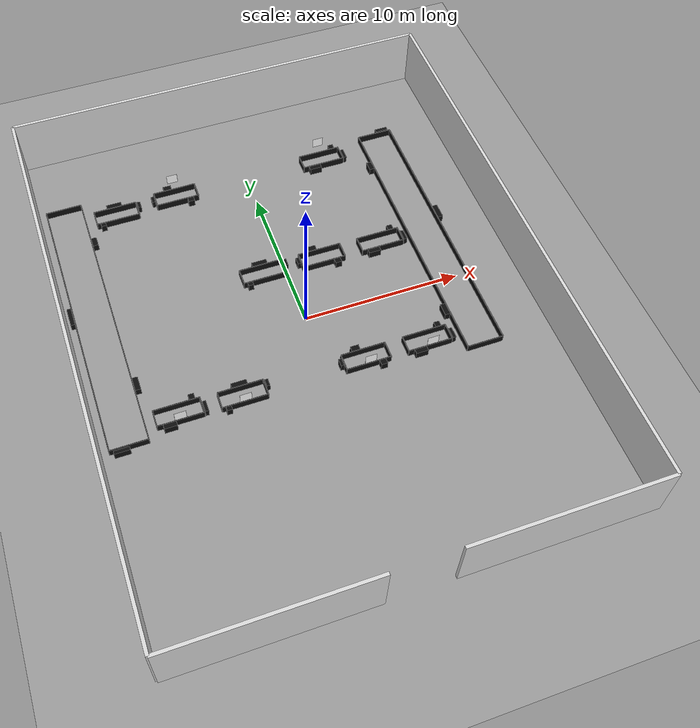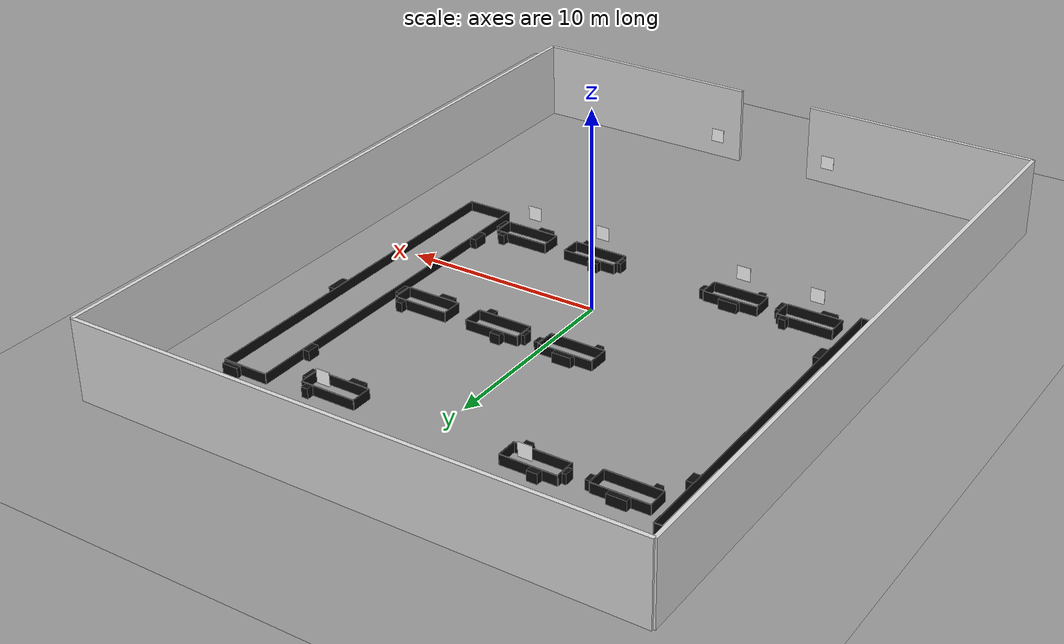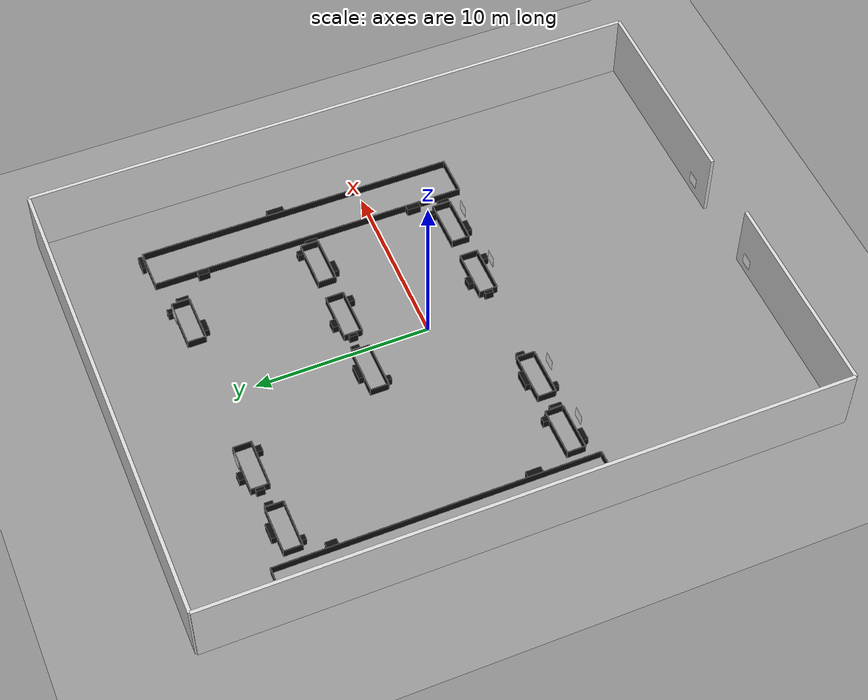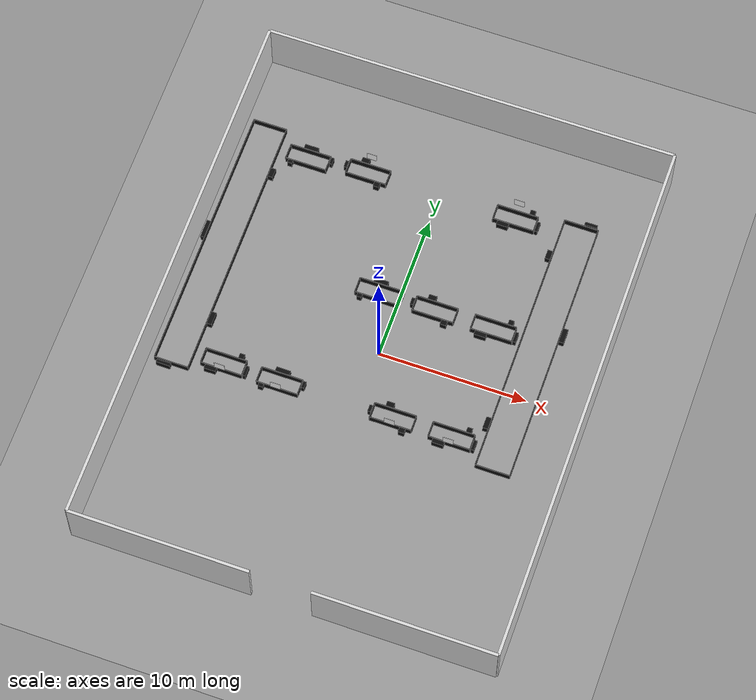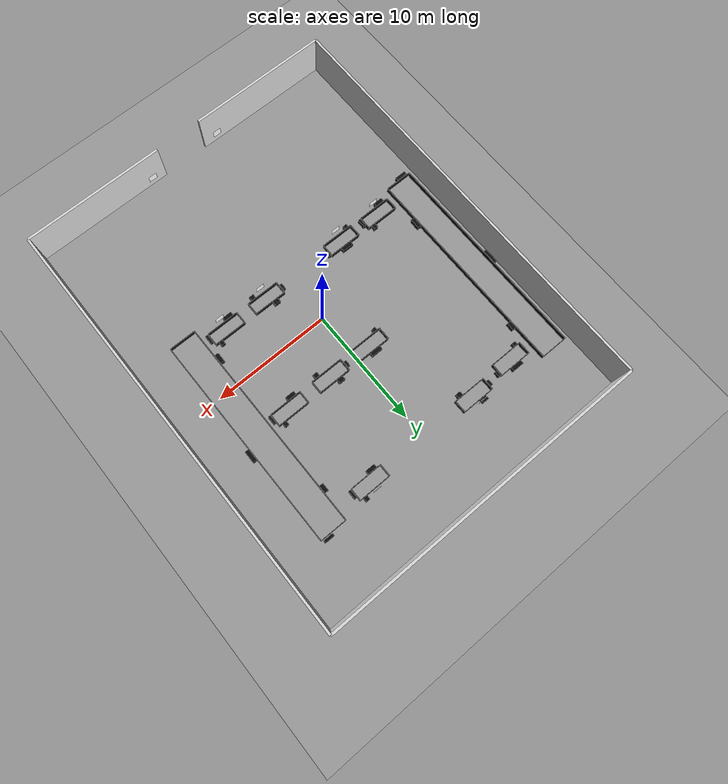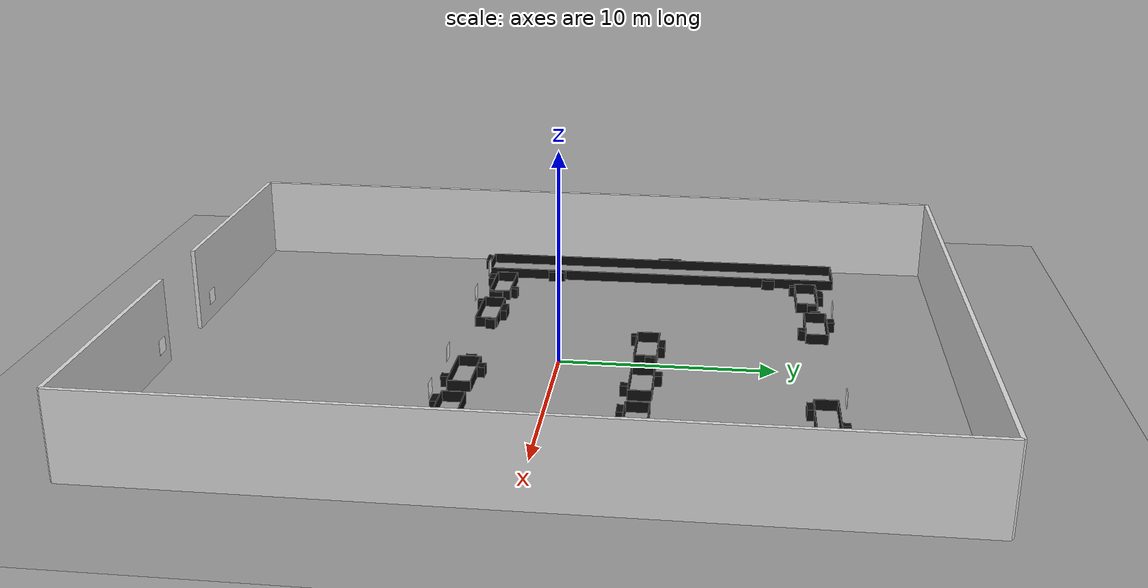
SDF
<sdf version="1.10">
 <world name="big_warehouse">
  <plugin name="gz::sim::systems::Physics" filename="gz-sim-physics-system"/>
  <plugin name="gz::sim::systems::SceneBroadcaster" filename="gz-sim-scene-broadcaster-system"/>
  <plugin name="gz::sim::systems::UserCommands" filename="gz-sim-user-commands-system"/>
  <plugin name="gz::sim::systems::Sensors" filename="gz-sim-sensors-system">
   <render_engine>ogre2</render_engine>
  </plugin>
  <gravity>0 0 -9.8000000000000007</gravity>
  <physics name="default_physics" type="ode">
   <max_step_size>0.01</max_step_size>
   <real_time_factor>1</real_time_factor>
   <real_time_update_rate>100</real_time_update_rate>
  </physics>
  <scene>
   <ambient>0.400000006 0.400000006 0.400000006 1</ambient>
   <background>0.699999988 0.699999988 0.699999988 1</background>
   <shadows>true</shadows>
  </scene>
  <magnetic_field>5.5644999999999998e-06 2.2875799999999999e-05 -4.2388400000000002e-05</magnetic_field>
  <atmosphere type="adiabatic"/>
  <model name="big_warehouse_ground">
   <static>true</static>
   <link name="ground_link">
    <collision name="ground_collision">
     <geometry><plane><normal>0 0 1</normal><size>40 50</size></plane></geometry>
    </collision>
    <visual name="ground_visual">
     <geometry><plane><normal>0 0 1</normal><size>40 50</size></plane></geometry>
     <material>
      <ambient>0.5 0.5 0.5 1</ambient>
      <diffuse>0.600000024 0.600000024 0.600000024 1</diffuse>
      <specular>0.200000003 0.200000003 0.200000003 1</specular>
     </material>
    </visual>
    <inertial>
     <mass>1</mass>
     <inertia><ixx>1</ixx><ixy>0</ixy><ixz>0</ixz><iyy>1</iyy><iyz>0</iyz><izz>1</izz></inertia>
    </inertial>
   </link>
  </model>
  <model name="wall_north">
   <static>true</static>
   <pose>0 18 2 0 0 0</pose>
   <link name="link">
    <collision name="c"><geometry><box><size>28 0.20000000000000001 4</size></box></geometry></collision>
    <visual name="v">
     <geometry><box><size>28 0.20000000000000001 4</size></box></geometry>
     <material>
      <ambient>0.800000012 0.800000012 0.800000012 1</ambient>
      <diffuse>0.850000024 0.850000024 0.850000024 1</diffuse>
     </material>
    </visual>
    <inertial>
     <mass>1</mass>
     <inertia><ixx>1</ixx><ixy>0</ixy><ixz>0</ixz><iyy>1</iyy><iyz>0</iyz><izz>1</izz></inertia>
    </inertial>
   </link>
  </model>
  <model name="wall_south_left">
   <static>true</static>
   <pose>-8 -18 2 0 0 0</pose>
   <link name="link">
    <collision name="c"><geometry><box><size>12 0.20000000000000001 4</size></box></geometry></collision>
    <visual name="v">
     <geometry><box><size>12 0.20000000000000001 4</size></box></geometry>
     <material>
      <ambient>0.800000012 0.800000012 0.800000012 1</ambient>
      <diffuse>0.850000024 0.850000024 0.850000024 1</diffuse>
     </material>
    </visual>
    <inertial>
     <mass>1</mass>
     <inertia><ixx>1</ixx><ixy>0</ixy><ixz>0</ixz><iyy>1</iyy><iyz>0</iyz><izz>1</izz></inertia>
    </inertial>
   </link>
  </model>
  <model name="wall_south_right">
   <static>true</static>
   <pose>8 -18 2 0 0 0</pose>
   <link name="link">
    <collision name="c"><geometry><box><size>12 0.20000000000000001 4</size></box></geometry></collision>
    <visual name="v">
     <geometry><box><size>12 0.20000000000000001 4</size></box></geometry>
     <material>
      <ambient>0.800000012 0.800000012 0.800000012 1</ambient>
      <diffuse>0.850000024 0.850000024 0.850000024 1</diffuse>
     </material>
    </visual>
    <inertial>
     <mass>1</mass>
     <inertia><ixx>1</ixx><ixy>0</ixy><ixz>0</ixz><iyy>1</iyy><iyz>0</iyz><izz>1</izz></inertia>
    </inertial>
   </link>
  </model>
  <model name="wall_east">
   <static>true</static>
   <pose>14 0 2 0 0 0</pose>
   <link name="link">
    <collision name="c"><geometry><box><size>0.20000000000000001 36 4</size></box></geometry></collision>
    <visual name="v">
     <geometry><box><size>0.20000000000000001 36 4</size></box></geometry>
     <material>
      <ambient>0.800000012 0.800000012 0.800000012 1</ambient>
      <diffuse>0.850000024 0.850000024 0.850000024 1</diffuse>
     </material>
    </visual>
    <inertial>
     <mass>1</mass>
     <inertia><ixx>1</ixx><ixy>0</ixy><ixz>0</ixz><iyy>1</iyy><iyz>0</iyz><izz>1</izz></inertia>
    </inertial>
   </link>
  </model>
  <model name="wall_west">
   <static>true</static>
   <pose>-14 0 2 0 0 0</pose>
   <link name="link">
    <collision name="c"><geometry><box><size>0.20000000000000001 36 4</size></box></geometry></collision>
    <visual name="v">
     <geometry><box><size>0.20000000000000001 36 4</size></box></geometry>
     <material>
      <ambient>0.800000012 0.800000012 0.800000012 1</ambient>
      <diffuse>0.850000024 0.850000024 0.850000024 1</diffuse>
     </material>
    </visual>
    <inertial>
     <mass>1</mass>
     <inertia><ixx>1</ixx><ixy>0</ixy><ixz>0</ixz><iyy>1</iyy><iyz>0</iyz><izz>1</izz></inertia>
    </inertial>
   </link>
  </model>
  <model name="aruco_marker_06">
   <include><uri>model://warehouse_aruco_marker_06</uri></include>
   <pose>-3.25 -17.72 1.25 0 0 1.5708</pose>
  </model>
  <model name="aruco_marker_07">
   <include><uri>model://warehouse_aruco_marker_07</uri></include>
   <pose>3.25 -17.72 1.25 0 0 1.5708</pose>
  </model>
  <model name="shelf_bank_2_a_lidar_blocker">
   <include><uri>model://warehouse_lidar_blocker_short_b</uri></include>
   <pose>-9.1134042739868164 -4 0 0 0 1.5708</pose>
  </model>
  <model name="aruco_marker_00">
   <include><uri>model://warehouse_aruco_marker_00</uri></include>
   <pose>-9.1134042739868164 -4.72 1.25 0 0 -1.5708</pose>
  </model>
  <model name="shelf_bank_2_b_lidar_blocker">
   <include><uri>model://warehouse_lidar_blocker_short_c</uri></include>
   <pose>-5.2876682281494141 -4.0644798278808594 0 0 0 1.5708</pose>
  </model>
  <model name="aruco_marker_01">
   <include><uri>model://warehouse_aruco_marker_01</uri></include>
   <pose>-5.2876682281494141 -4.7844798278808594 1.25 0 0 -1.5708</pose>
  </model>
  <model name="shelf_bank_2_c_lidar_blocker">
   <include><uri>model://warehouse_lidar_blocker_short</uri></include>
   <pose>2.3689959049224854 -4 0 0 0 1.5708</pose>
  </model>
  <model name="aruco_marker_02">
   <include><uri>model://warehouse_aruco_marker_02</uri></include>
   <pose>2.3689959049224854 -4.72 1.25 0 0 -1.5708</pose>
  </model>
  <model name="shelf_bank_2_d_lidar_blocker">
   <include><uri>model://warehouse_lidar_blocker_short_b</uri></include>
   <pose>6.2993936538696289 -4 0 0 0 1.5708</pose>
  </model>
  <model name="aruco_marker_03">
   <include><uri>model://warehouse_aruco_marker_03</uri></include>
   <pose>6.2993936538696289 -4.72 1.25 0 0 -1.5708</pose>
  </model>
  <model name="shelf_bank_3_a_lidar_blocker">
   <include><uri>model://warehouse_lidar_blocker_long_b</uri></include>
   <pose>-12.286680221557617 4 0 0 0 0</pose>
  </model>
  <model name="shelf_bank_3_b_lidar_blocker">
   <include><uri>model://warehouse_lidar_blocker_short_c</uri></include>
   <pose>-1.4750902652740479 4 0 0 0 1.5708</pose>
  </model>
  <model name="shelf_bank_3_c_lidar_blocker">
   <include><uri>model://warehouse_lidar_blocker_short</uri></include>
   <pose>2.4397945404052734 4 0 0 0 1.5708</pose>
  </model>
  <model name="shelf_bank_3_d_lidar_blocker">
   <include><uri>model://warehouse_lidar_blocker_short_b</uri></include>
   <pose>6.4202580451965332 4 0 0 0 1.5708</pose>
  </model>
  <model name="shelf_bank_4_a_lidar_blocker">
   <include><uri>model://warehouse_lidar_blocker_short_c</uri></include>
   <pose>-9.0655641555786133 11.693599700927734 0 0 0 1.5708</pose>
  </model>
  <model name="shelf_bank_4_b_lidar_blocker">
   <include><uri>model://warehouse_lidar_blocker_short</uri></include>
   <pose>-4.9744858741760254 12 0 0 0 1.5708</pose>
  </model>
  <model name="aruco_marker_04">
   <include><uri>model://warehouse_aruco_marker_04</uri></include>
   <pose>-4.9744858741760254 12.72 1.25 0 0 1.5708</pose>
  </model>
  <model name="shelf_bank_4_c_lidar_blocker">
   <include><uri>model://warehouse_lidar_blocker_short_b</uri></include>
   <pose>5.2562918663024902 12 0 0 0 1.5708</pose>
  </model>
  <model name="aruco_marker_05">
   <include><uri>model://warehouse_aruco_marker_05</uri></include>
   <pose>5.2562918663024902 12.72 1.25 0 0 1.5708</pose>
  </model>
  <model name="shelf_bank_4_d_lidar_blocker">
   <include><uri>model://warehouse_lidar_blocker_long</uri></include>
   <pose>9.5003032684326172 3.7647700309753418 0 0 0 0</pose>
  </model>
  <light name="Warehouse_CeilingLight_001" type="point">
   <pose>-7 -9 9 0 0 0</pose>
   <intensity>1</intensity>
   <direction>0 0 -1</direction>
   <diffuse>0.5 0.5 0.5 1</diffuse>
   <specular>0.200000003 0.200000003 0.200000003 1</specular>
   <attenuation>
    <range>120</range>
    <linear>0.01</linear>
    <constant>0.29999999999999999</constant>
    <quadratic>0.001</quadratic>
   </attenuation>
   <spot><inner_angle>0</inner_angle><outer_angle>0</outer_angle><falloff>0</falloff></spot>
  </light>
  <light name="Warehouse_CeilingLight_002" type="point">
   <pose>7 -9 9 0 0 0</pose>
   <intensity>1</intensity>
   <direction>0 0 -1</direction>
   <diffuse>0.5 0.5 0.5 1</diffuse>
   <specular>0.200000003 0.200000003 0.200000003 1</specular>
   <attenuation>
    <range>120</range>
    <linear>0.01</linear>
    <constant>0.29999999999999999</constant>
    <quadratic>0.001</quadratic>
   </attenuation>
   <spot><inner_angle>0</inner_angle><outer_angle>0</outer_angle><falloff>0</falloff></spot>
  </light>
  <light name="Warehouse_CeilingLight_003" type="point">
   <pose>-7 9 9 0 0 0</pose>
   <intensity>1</intensity>
   <direction>0 0 -1</direction>
   <diffuse>0.5 0.5 0.5 1</diffuse>
   <specular>0.200000003 0.200000003 0.200000003 1</specular>
   <attenuation>
    <range>120</range>
    <linear>0.01</linear>
    <constant>0.29999999999999999</constant>
    <quadratic>0.001</quadratic>
   </attenuation>
   <spot><inner_angle>0</inner_angle><outer_angle>0</outer_angle><falloff>0</falloff></spot>
  </light>
  <light name="Warehouse_CeilingLight_004" type="point">
   <pose>7 9 9 0 0 0</pose>
   <intensity>1</intensity>
   <direction>0 0 -1</direction>
   <diffuse>0.5 0.5 0.5 1</diffuse>
   <specular>0.200000003 0.200000003 0.200000003 1</specular>
   <attenuation>
    <range>120</range>
    <linear>0.01</linear>
    <constant>0.29999999999999999</constant>
    <quadratic>0.001</quadratic>
   </attenuation>
   <spot><inner_angle>0</inner_angle><outer_angle>0</outer_angle><falloff>0</falloff></spot>
  </light>
 </world>
</sdf>

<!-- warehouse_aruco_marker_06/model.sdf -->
<sdf version="1.6">
  <model name="warehouse_aruco_marker_06">
    <static>true</static>
    <link name="link">
      <visual name="marker_visual">
        <cast_shadows>false</cast_shadows>
        <geometry>
          <box>
            <size>0.02 0.70 0.70</size>
          </box>
        </geometry>
        <material>
          <ambient>1 1 1 1</ambient>
          <diffuse>1 1 1 1</diffuse>
          <specular>0.1 0.1 0.1 1</specular>
          <pbr>
            <metal>
              <albedo_map>materials/textures/aruco_06.png</albedo_map>
              <metalness>0.0</metalness>
              <roughness>0.8</roughness>
            </metal>
          </pbr>
        </material>
      </visual>
    </link>
  </model>
</sdf>

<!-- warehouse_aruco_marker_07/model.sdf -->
<sdf version="1.6">
  <model name="warehouse_aruco_marker_07">
    <static>true</static>
    <link name="link">
      <visual name="marker_visual">
        <cast_shadows>false</cast_shadows>
        <geometry>
          <box>
            <size>0.02 0.70 0.70</size>
          </box>
        </geometry>
        <material>
          <ambient>1 1 1 1</ambient>
          <diffuse>1 1 1 1</diffuse>
          <specular>0.1 0.1 0.1 1</specular>
          <pbr>
            <metal>
              <albedo_map>materials/textures/aruco_07.png</albedo_map>
              <metalness>0.0</metalness>
              <roughness>0.8</roughness>
            </metal>
          </pbr>
        </material>
      </visual>
    </link>
  </model>
</sdf>

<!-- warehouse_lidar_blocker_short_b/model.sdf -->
<sdf version="1.6">
  <model name="warehouse_lidar_blocker_short_b">
    <static>true</static>
    <link name="link">
      <collision name="x_min_lidar_rail_collision">
        <pose>-0.525 0 0.25 0 0 0</pose>
        <geometry><box><size>0.05 2.80 0.50</size></box></geometry>
      </collision>
      <collision name="x_max_lidar_rail_collision">
        <pose>0.525 0 0.25 0 0 0</pose>
        <geometry><box><size>0.05 2.80 0.50</size></box></geometry>
      </collision>
      <collision name="y_min_lidar_rail_collision">
        <pose>0 -1.40 0.25 0 0 0</pose>
        <geometry><box><size>1.05 0.05 0.50</size></box></geometry>
      </collision>
      <collision name="y_max_lidar_rail_collision">
        <pose>0 1.40 0.25 0 0 0</pose>
        <geometry><box><size>1.05 0.05 0.50</size></box></geometry>
      </collision>
      <collision name="west_marker_collision">
        <pose>-0.70 0.66 0.25 0 0 0</pose>
        <geometry><box><size>0.30 0.78 0.50</size></box></geometry>
      </collision>
      <collision name="south_marker_collision">
        <pose>-0.16 -1.56 0.25 0 0 0</pose>
        <geometry><box><size>0.70 0.20 0.50</size></box></geometry>
      </collision>
      <collision name="east_marker_collision">
        <pose>0.72 -0.96 0.25 0 0 0</pose>
        <geometry><box><size>0.34 0.34 0.50</size></box></geometry>
      </collision>
      <visual name="x_min_lidar_rail">
        <pose>-0.525 0 0.25 0 0 0</pose>
        <cast_shadows>false</cast_shadows>
        <geometry><box><size>0.05 2.80 0.50</size></box></geometry>
        <material><ambient>0.03 0.03 0.03 1</ambient><diffuse>0.05 0.05 0.05 1</diffuse></material>
      </visual>
      <visual name="x_max_lidar_rail">
        <pose>0.525 0 0.25 0 0 0</pose>
        <cast_shadows>false</cast_shadows>
        <geometry><box><size>0.05 2.80 0.50</size></box></geometry>
        <material><ambient>0.03 0.03 0.03 1</ambient><diffuse>0.05 0.05 0.05 1</diffuse></material>
      </visual>
      <visual name="y_min_lidar_rail">
        <pose>0 -1.40 0.25 0 0 0</pose>
        <cast_shadows>false</cast_shadows>
        <geometry><box><size>1.05 0.05 0.50</size></box></geometry>
        <material><ambient>0.03 0.03 0.03 1</ambient><diffuse>0.05 0.05 0.05 1</diffuse></material>
      </visual>
      <visual name="y_max_lidar_rail">
        <pose>0 1.40 0.25 0 0 0</pose>
        <cast_shadows>false</cast_shadows>
        <geometry><box><size>1.05 0.05 0.50</size></box></geometry>
        <material><ambient>0.03 0.03 0.03 1</ambient><diffuse>0.05 0.05 0.05 1</diffuse></material>
      </visual>
      <visual name="west_marker">
        <pose>-0.70 0.66 0.25 0 0 0</pose>
        <cast_shadows>false</cast_shadows>
        <geometry><box><size>0.30 0.78 0.50</size></box></geometry>
        <material><ambient>0.03 0.03 0.03 1</ambient><diffuse>0.05 0.05 0.05 1</diffuse></material>
      </visual>
      <visual name="south_marker">
        <pose>-0.16 -1.56 0.25 0 0 0</pose>
        <cast_shadows>false</cast_shadows>
        <geometry><box><size>0.70 0.20 0.50</size></box></geometry>
        <material><ambient>0.03 0.03 0.03 1</ambient><diffuse>0.05 0.05 0.05 1</diffuse></material>
      </visual>
      <visual name="east_marker">
        <pose>0.72 -0.96 0.25 0 0 0</pose>
        <cast_shadows>false</cast_shadows>
        <geometry><box><size>0.34 0.34 0.50</size></box></geometry>
        <material><ambient>0.03 0.03 0.03 1</ambient><diffuse>0.05 0.05 0.05 1</diffuse></material>
      </visual>
    </link>
  </model>
</sdf>

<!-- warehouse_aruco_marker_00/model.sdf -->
<sdf version="1.6">
  <model name="warehouse_aruco_marker_00">
    <static>true</static>
    <link name="link">
      <visual name="marker_visual">
        <cast_shadows>false</cast_shadows>
        <geometry>
          <box>
            <size>0.02 0.70 0.70</size>
          </box>
        </geometry>
        <material>
          <ambient>1 1 1 1</ambient>
          <diffuse>1 1 1 1</diffuse>
          <specular>0.1 0.1 0.1 1</specular>
          <pbr>
            <metal>
              <albedo_map>materials/textures/aruco_00.png</albedo_map>
              <metalness>0.0</metalness>
              <roughness>0.8</roughness>
            </metal>
          </pbr>
        </material>
      </visual>
    </link>
  </model>
</sdf>

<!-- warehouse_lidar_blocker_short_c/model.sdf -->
<sdf version="1.6">
  <model name="warehouse_lidar_blocker_short_c">
    <static>true</static>
    <link name="link">
      <collision name="x_min_lidar_rail_collision">
        <pose>-0.525 0 0.25 0 0 0</pose>
        <geometry><box><size>0.05 2.80 0.50</size></box></geometry>
      </collision>
      <collision name="x_max_lidar_rail_collision">
        <pose>0.525 0 0.25 0 0 0</pose>
        <geometry><box><size>0.05 2.80 0.50</size></box></geometry>
      </collision>
      <collision name="y_min_lidar_rail_collision">
        <pose>0 -1.40 0.25 0 0 0</pose>
        <geometry><box><size>1.05 0.05 0.50</size></box></geometry>
      </collision>
      <collision name="y_max_lidar_rail_collision">
        <pose>0 1.40 0.25 0 0 0</pose>
        <geometry><box><size>1.05 0.05 0.50</size></box></geometry>
      </collision>
      <collision name="east_marker_collision">
        <pose>0.70 0.02 0.25 0 0 0</pose>
        <geometry><box><size>0.30 0.96 0.50</size></box></geometry>
      </collision>
      <collision name="west_marker_collision">
        <pose>-0.68 1.02 0.25 0 0 0</pose>
        <geometry><box><size>0.26 0.32 0.50</size></box></geometry>
      </collision>
      <collision name="south_marker_collision">
        <pose>0.24 -1.56 0.25 0 0 0</pose>
        <geometry><box><size>0.46 0.20 0.50</size></box></geometry>
      </collision>
      <visual name="x_min_lidar_rail">
        <pose>-0.525 0 0.25 0 0 0</pose>
        <cast_shadows>false</cast_shadows>
        <geometry><box><size>0.05 2.80 0.50</size></box></geometry>
        <material><ambient>0.03 0.03 0.03 1</ambient><diffuse>0.05 0.05 0.05 1</diffuse></material>
      </visual>
      <visual name="x_max_lidar_rail">
        <pose>0.525 0 0.25 0 0 0</pose>
        <cast_shadows>false</cast_shadows>
        <geometry><box><size>0.05 2.80 0.50</size></box></geometry>
        <material><ambient>0.03 0.03 0.03 1</ambient><diffuse>0.05 0.05 0.05 1</diffuse></material>
      </visual>
      <visual name="y_min_lidar_rail">
        <pose>0 -1.40 0.25 0 0 0</pose>
        <cast_shadows>false</cast_shadows>
        <geometry><box><size>1.05 0.05 0.50</size></box></geometry>
        <material><ambient>0.03 0.03 0.03 1</ambient><diffuse>0.05 0.05 0.05 1</diffuse></material>
      </visual>
      <visual name="y_max_lidar_rail">
        <pose>0 1.40 0.25 0 0 0</pose>
        <cast_shadows>false</cast_shadows>
        <geometry><box><size>1.05 0.05 0.50</size></box></geometry>
        <material><ambient>0.03 0.03 0.03 1</ambient><diffuse>0.05 0.05 0.05 1</diffuse></material>
      </visual>
      <visual name="east_marker">
        <pose>0.70 0.02 0.25 0 0 0</pose>
        <cast_shadows>false</cast_shadows>
        <geometry><box><size>0.30 0.96 0.50</size></box></geometry>
        <material><ambient>0.03 0.03 0.03 1</ambient><diffuse>0.05 0.05 0.05 1</diffuse></material>
      </visual>
      <visual name="west_marker">
        <pose>-0.68 1.02 0.25 0 0 0</pose>
        <cast_shadows>false</cast_shadows>
        <geometry><box><size>0.26 0.32 0.50</size></box></geometry>
        <material><ambient>0.03 0.03 0.03 1</ambient><diffuse>0.05 0.05 0.05 1</diffuse></material>
      </visual>
      <visual name="south_marker">
        <pose>0.24 -1.56 0.25 0 0 0</pose>
        <cast_shadows>false</cast_shadows>
        <geometry><box><size>0.46 0.20 0.50</size></box></geometry>
        <material><ambient>0.03 0.03 0.03 1</ambient><diffuse>0.05 0.05 0.05 1</diffuse></material>
      </visual>
    </link>
  </model>
</sdf>

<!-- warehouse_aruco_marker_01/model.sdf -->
<sdf version="1.6">
  <model name="warehouse_aruco_marker_01">
    <static>true</static>
    <link name="link">
      <visual name="marker_visual">
        <cast_shadows>false</cast_shadows>
        <geometry>
          <box>
            <size>0.02 0.70 0.70</size>
          </box>
        </geometry>
        <material>
          <ambient>1 1 1 1</ambient>
          <diffuse>1 1 1 1</diffuse>
          <specular>0.1 0.1 0.1 1</specular>
          <pbr>
            <metal>
              <albedo_map>materials/textures/aruco_01.png</albedo_map>
              <metalness>0.0</metalness>
              <roughness>0.8</roughness>
            </metal>
          </pbr>
        </material>
      </visual>
    </link>
  </model>
</sdf>

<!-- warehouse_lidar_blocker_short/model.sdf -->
<sdf version="1.6">
  <model name="warehouse_lidar_blocker_short">
    <static>true</static>
    <link name="link">
      <!-- Keep the shelf footprint lidar-visible, but put the distinguishing
           features on the OUTSIDE of the rack so they are actually visible to
           the scanner from the aisle. -->
      <collision name="x_min_lidar_rail_collision">
        <pose>-0.525 0 0.25 0 0 0</pose>
        <geometry>
          <box>
            <size>0.05 2.80 0.50</size>
          </box>
        </geometry>
      </collision>
      <collision name="x_max_lidar_rail_collision">
        <pose>0.525 0 0.25 0 0 0</pose>
        <geometry>
          <box>
            <size>0.05 2.80 0.50</size>
          </box>
        </geometry>
      </collision>
      <collision name="y_min_lidar_rail_collision">
        <pose>0 -1.40 0.25 0 0 0</pose>
        <geometry>
          <box>
            <size>1.05 0.05 0.50</size>
          </box>
        </geometry>
      </collision>
      <collision name="y_max_lidar_rail_collision">
        <pose>0 1.40 0.25 0 0 0</pose>
        <geometry>
          <box>
            <size>1.05 0.05 0.50</size>
          </box>
        </geometry>
      </collision>
      <collision name="west_marker_collision">
        <pose>-0.72 -0.84 0.25 0 0 0</pose>
        <geometry>
          <box>
            <size>0.34 0.40 0.50</size>
          </box>
        </geometry>
      </collision>
      <collision name="east_marker_collision">
        <pose>0.72 0.42 0.25 0 0 0</pose>
        <geometry>
          <box>
            <size>0.34 0.52 0.50</size>
          </box>
        </geometry>
      </collision>
      <collision name="north_marker_collision">
        <pose>0.05 1.55 0.25 0 0 0</pose>
        <geometry>
          <box>
            <size>0.48 0.20 0.50</size>
          </box>
        </geometry>
      </collision>
      <visual name="x_min_lidar_rail">
        <pose>-0.525 0 0.25 0 0 0</pose>
        <cast_shadows>false</cast_shadows>
        <geometry>
          <box>
            <size>0.05 2.80 0.50</size>
          </box>
        </geometry>
        <material>
          <ambient>0.03 0.03 0.03 1</ambient>
          <diffuse>0.05 0.05 0.05 1</diffuse>
        </material>
      </visual>
      <visual name="x_max_lidar_rail">
        <pose>0.525 0 0.25 0 0 0</pose>
        <cast_shadows>false</cast_shadows>
        <geometry>
          <box>
            <size>0.05 2.80 0.50</size>
          </box>
        </geometry>
        <material>
          <ambient>0.03 0.03 0.03 1</ambient>
          <diffuse>0.05 0.05 0.05 1</diffuse>
        </material>
      </visual>
      <visual name="y_min_lidar_rail">
        <pose>0 -1.40 0.25 0 0 0</pose>
        <cast_shadows>false</cast_shadows>
        <geometry>
          <box>
            <size>1.05 0.05 0.50</size>
          </box>
        </geometry>
        <material>
          <ambient>0.03 0.03 0.03 1</ambient>
          <diffuse>0.05 0.05 0.05 1</diffuse>
        </material>
      </visual>
      <visual name="y_max_lidar_rail">
        <pose>0 1.40 0.25 0 0 0</pose>
        <cast_shadows>false</cast_shadows>
        <geometry>
          <box>
            <size>1.05 0.05 0.50</size>
          </box>
        </geometry>
        <material>
          <ambient>0.03 0.03 0.03 1</ambient>
          <diffuse>0.05 0.05 0.05 1</diffuse>
        </material>
      </visual>
      <visual name="west_marker">
        <pose>-0.72 -0.84 0.25 0 0 0</pose>
        <cast_shadows>false</cast_shadows>
        <geometry>
          <box>
            <size>0.34 0.40 0.50</size>
          </box>
        </geometry>
        <material>
          <ambient>0.03 0.03 0.03 1</ambient>
          <diffuse>0.05 0.05 0.05 1</diffuse>
        </material>
      </visual>
      <visual name="east_marker">
        <pose>0.72 0.42 0.25 0 0 0</pose>
        <cast_shadows>false</cast_shadows>
        <geometry>
          <box>
            <size>0.34 0.52 0.50</size>
          </box>
        </geometry>
        <material>
          <ambient>0.03 0.03 0.03 1</ambient>
          <diffuse>0.05 0.05 0.05 1</diffuse>
        </material>
      </visual>
      <visual name="north_marker">
        <pose>0.05 1.55 0.25 0 0 0</pose>
        <cast_shadows>false</cast_shadows>
        <geometry>
          <box>
            <size>0.48 0.20 0.50</size>
          </box>
        </geometry>
        <material>
          <ambient>0.03 0.03 0.03 1</ambient>
          <diffuse>0.05 0.05 0.05 1</diffuse>
        </material>
      </visual>
    </link>
  </model>
</sdf>

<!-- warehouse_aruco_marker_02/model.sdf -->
<sdf version="1.6">
  <model name="warehouse_aruco_marker_02">
    <static>true</static>
    <link name="link">
      <visual name="marker_visual">
        <cast_shadows>false</cast_shadows>
        <geometry>
          <box>
            <size>0.02 0.70 0.70</size>
          </box>
        </geometry>
        <material>
          <ambient>1 1 1 1</ambient>
          <diffuse>1 1 1 1</diffuse>
          <specular>0.1 0.1 0.1 1</specular>
          <pbr>
            <metal>
              <albedo_map>materials/textures/aruco_02.png</albedo_map>
              <metalness>0.0</metalness>
              <roughness>0.8</roughness>
            </metal>
          </pbr>
        </material>
      </visual>
    </link>
  </model>
</sdf>

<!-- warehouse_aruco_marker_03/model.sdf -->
<sdf version="1.6">
  <model name="warehouse_aruco_marker_03">
    <static>true</static>
    <link name="link">
      <visual name="marker_visual">
        <cast_shadows>false</cast_shadows>
        <geometry>
          <box>
            <size>0.02 0.70 0.70</size>
          </box>
        </geometry>
        <material>
          <ambient>1 1 1 1</ambient>
          <diffuse>1 1 1 1</diffuse>
          <specular>0.1 0.1 0.1 1</specular>
          <pbr>
            <metal>
              <albedo_map>materials/textures/aruco_03.png</albedo_map>
              <metalness>0.0</metalness>
              <roughness>0.8</roughness>
            </metal>
          </pbr>
        </material>
      </visual>
    </link>
  </model>
</sdf>

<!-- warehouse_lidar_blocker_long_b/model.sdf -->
<sdf version="1.6">
  <model name="warehouse_lidar_blocker_long_b">
    <static>true</static>
    <link name="link">
      <collision name="x_min_lidar_rail_collision">
        <pose>-1.15 0 0.25 0 0 0</pose>
        <geometry><box><size>0.05 18.30 0.50</size></box></geometry>
      </collision>
      <collision name="x_max_lidar_rail_collision">
        <pose>1.15 0 0.25 0 0 0</pose>
        <geometry><box><size>0.05 18.30 0.50</size></box></geometry>
      </collision>
      <collision name="y_min_lidar_rail_collision">
        <pose>0 -9.15 0.25 0 0 0</pose>
        <geometry><box><size>2.30 0.05 0.50</size></box></geometry>
      </collision>
      <collision name="y_max_lidar_rail_collision">
        <pose>0 9.15 0.25 0 0 0</pose>
        <geometry><box><size>2.30 0.05 0.50</size></box></geometry>
      </collision>
      <collision name="east_marker_low_collision">
        <pose>1.34 -5.40 0.25 0 0 0</pose>
        <geometry><box><size>0.34 0.88 0.50</size></box></geometry>
      </collision>
      <collision name="west_marker_mid_collision">
        <pose>-1.30 0.50 0.25 0 0 0</pose>
        <geometry><box><size>0.26 1.24 0.50</size></box></geometry>
      </collision>
      <collision name="east_marker_high_collision">
        <pose>1.34 5.80 0.25 0 0 0</pose>
        <geometry><box><size>0.34 0.64 0.50</size></box></geometry>
      </collision>
      <collision name="south_marker_collision">
        <pose>-0.45 -9.36 0.25 0 0 0</pose>
        <geometry><box><size>0.94 0.22 0.50</size></box></geometry>
      </collision>
      <visual name="x_min_lidar_rail">
        <pose>-1.15 0 0.25 0 0 0</pose>
        <cast_shadows>false</cast_shadows>
        <geometry><box><size>0.05 18.30 0.50</size></box></geometry>
        <material><ambient>0.03 0.03 0.03 1</ambient><diffuse>0.05 0.05 0.05 1</diffuse></material>
      </visual>
      <visual name="x_max_lidar_rail">
        <pose>1.15 0 0.25 0 0 0</pose>
        <cast_shadows>false</cast_shadows>
        <geometry><box><size>0.05 18.30 0.50</size></box></geometry>
        <material><ambient>0.03 0.03 0.03 1</ambient><diffuse>0.05 0.05 0.05 1</diffuse></material>
      </visual>
      <visual name="y_min_lidar_rail">
        <pose>0 -9.15 0.25 0 0 0</pose>
        <cast_shadows>false</cast_shadows>
        <geometry><box><size>2.30 0.05 0.50</size></box></geometry>
        <material><ambient>0.03 0.03 0.03 1</ambient><diffuse>0.05 0.05 0.05 1</diffuse></material>
      </visual>
      <visual name="y_max_lidar_rail">
        <pose>0 9.15 0.25 0 0 0</pose>
        <cast_shadows>false</cast_shadows>
        <geometry><box><size>2.30 0.05 0.50</size></box></geometry>
        <material><ambient>0.03 0.03 0.03 1</ambient><diffuse>0.05 0.05 0.05 1</diffuse></material>
      </visual>
      <visual name="east_marker_low">
        <pose>1.34 -5.40 0.25 0 0 0</pose>
        <cast_shadows>false</cast_shadows>
        <geometry><box><size>0.34 0.88 0.50</size></box></geometry>
        <material><ambient>0.03 0.03 0.03 1</ambient><diffuse>0.05 0.05 0.05 1</diffuse></material>
      </visual>
      <visual name="west_marker_mid">
        <pose>-1.30 0.50 0.25 0 0 0</pose>
        <cast_shadows>false</cast_shadows>
        <geometry><box><size>0.26 1.24 0.50</size></box></geometry>
        <material><ambient>0.03 0.03 0.03 1</ambient><diffuse>0.05 0.05 0.05 1</diffuse></material>
      </visual>
      <visual name="east_marker_high">
        <pose>1.34 5.80 0.25 0 0 0</pose>
        <cast_shadows>false</cast_shadows>
        <geometry><box><size>0.34 0.64 0.50</size></box></geometry>
        <material><ambient>0.03 0.03 0.03 1</ambient><diffuse>0.05 0.05 0.05 1</diffuse></material>
      </visual>
      <visual name="south_marker">
        <pose>-0.45 -9.36 0.25 0 0 0</pose>
        <cast_shadows>false</cast_shadows>
        <geometry><box><size>0.94 0.22 0.50</size></box></geometry>
        <material><ambient>0.03 0.03 0.03 1</ambient><diffuse>0.05 0.05 0.05 1</diffuse></material>
      </visual>
    </link>
  </model>
</sdf>

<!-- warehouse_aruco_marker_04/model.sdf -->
<sdf version="1.6">
  <model name="warehouse_aruco_marker_04">
    <static>true</static>
    <link name="link">
      <visual name="marker_visual">
        <cast_shadows>false</cast_shadows>
        <geometry>
          <box>
            <size>0.02 0.70 0.70</size>
          </box>
        </geometry>
        <material>
          <ambient>1 1 1 1</ambient>
          <diffuse>1 1 1 1</diffuse>
          <specular>0.1 0.1 0.1 1</specular>
          <pbr>
            <metal>
              <albedo_map>materials/textures/aruco_04.png</albedo_map>
              <metalness>0.0</metalness>
              <roughness>0.8</roughness>
            </metal>
          </pbr>
        </material>
      </visual>
    </link>
  </model>
</sdf>

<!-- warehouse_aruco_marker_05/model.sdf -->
<sdf version="1.6">
  <model name="warehouse_aruco_marker_05">
    <static>true</static>
    <link name="link">
      <visual name="marker_visual">
        <cast_shadows>false</cast_shadows>
        <geometry>
          <box>
            <size>0.02 0.70 0.70</size>
          </box>
        </geometry>
        <material>
          <ambient>1 1 1 1</ambient>
          <diffuse>1 1 1 1</diffuse>
          <specular>0.1 0.1 0.1 1</specular>
          <pbr>
            <metal>
              <albedo_map>materials/textures/aruco_05.png</albedo_map>
              <metalness>0.0</metalness>
              <roughness>0.8</roughness>
            </metal>
          </pbr>
        </material>
      </visual>
    </link>
  </model>
</sdf>

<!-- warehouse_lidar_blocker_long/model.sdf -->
<sdf version="1.6">
  <model name="warehouse_lidar_blocker_long">
    <static>true</static>
    <link name="link">
      <!-- Use shelf-outline rails plus a few exterior signatures so long racks
           stop looking like featureless bars, without placing fake obstacles
           out in the open floor. -->
      <collision name="x_min_lidar_rail_collision">
        <pose>-1.15 0 0.25 0 0 0</pose>
        <geometry>
          <box>
            <size>0.05 18.30 0.50</size>
          </box>
        </geometry>
      </collision>
      <collision name="x_max_lidar_rail_collision">
        <pose>1.15 0 0.25 0 0 0</pose>
        <geometry>
          <box>
            <size>0.05 18.30 0.50</size>
          </box>
        </geometry>
      </collision>
      <collision name="y_min_lidar_rail_collision">
        <pose>0 -9.15 0.25 0 0 0</pose>
        <geometry>
          <box>
            <size>2.30 0.05 0.50</size>
          </box>
        </geometry>
      </collision>
      <collision name="y_max_lidar_rail_collision">
        <pose>0 9.15 0.25 0 0 0</pose>
        <geometry>
          <box>
            <size>2.30 0.05 0.50</size>
          </box>
        </geometry>
      </collision>
      <collision name="west_marker_low_collision">
        <pose>-1.34 -6.20 0.25 0 0 0</pose>
        <geometry>
          <box>
            <size>0.34 0.80 0.50</size>
          </box>
        </geometry>
      </collision>
      <collision name="east_marker_mid_collision">
        <pose>1.34 1.20 0.25 0 0 0</pose>
        <geometry>
          <box>
            <size>0.34 1.00 0.50</size>
          </box>
        </geometry>
      </collision>
      <collision name="west_marker_high_collision">
        <pose>-1.34 6.40 0.25 0 0 0</pose>
        <geometry>
          <box>
            <size>0.34 0.64 0.50</size>
          </box>
        </geometry>
      </collision>
      <collision name="north_marker_collision">
        <pose>0.60 9.36 0.25 0 0 0</pose>
        <geometry>
          <box>
            <size>0.84 0.22 0.50</size>
          </box>
        </geometry>
      </collision>
      <visual name="x_min_lidar_rail">
        <pose>-1.15 0 0.25 0 0 0</pose>
        <cast_shadows>false</cast_shadows>
        <geometry>
          <box>
            <size>0.05 18.30 0.50</size>
          </box>
        </geometry>
        <material>
          <ambient>0.03 0.03 0.03 1</ambient>
          <diffuse>0.05 0.05 0.05 1</diffuse>
        </material>
      </visual>
      <visual name="x_max_lidar_rail">
        <pose>1.15 0 0.25 0 0 0</pose>
        <cast_shadows>false</cast_shadows>
        <geometry>
          <box>
            <size>0.05 18.30 0.50</size>
          </box>
        </geometry>
        <material>
          <ambient>0.03 0.03 0.03 1</ambient>
          <diffuse>0.05 0.05 0.05 1</diffuse>
        </material>
      </visual>
      <visual name="y_min_lidar_rail">
        <pose>0 -9.15 0.25 0 0 0</pose>
        <cast_shadows>false</cast_shadows>
        <geometry>
          <box>
            <size>2.30 0.05 0.50</size>
          </box>
        </geometry>
        <material>
          <ambient>0.03 0.03 0.03 1</ambient>
          <diffuse>0.05 0.05 0.05 1</diffuse>
        </material>
      </visual>
      <visual name="y_max_lidar_rail">
        <pose>0 9.15 0.25 0 0 0</pose>
        <cast_shadows>false</cast_shadows>
        <geometry>
          <box>
            <size>2.30 0.05 0.50</size>
          </box>
        </geometry>
        <material>
          <ambient>0.03 0.03 0.03 1</ambient>
          <diffuse>0.05 0.05 0.05 1</diffuse>
        </material>
      </visual>
      <visual name="west_marker_low">
        <pose>-1.34 -6.20 0.25 0 0 0</pose>
        <cast_shadows>false</cast_shadows>
        <geometry>
          <box>
            <size>0.34 0.80 0.50</size>
          </box>
        </geometry>
        <material>
          <ambient>0.03 0.03 0.03 1</ambient>
          <diffuse>0.05 0.05 0.05 1</diffuse>
        </material>
      </visual>
      <visual name="east_marker_mid">
        <pose>1.34 1.20 0.25 0 0 0</pose>
        <cast_shadows>false</cast_shadows>
        <geometry>
          <box>
            <size>0.34 1.00 0.50</size>
          </box>
        </geometry>
        <material>
          <ambient>0.03 0.03 0.03 1</ambient>
          <diffuse>0.05 0.05 0.05 1</diffuse>
        </material>
      </visual>
      <visual name="west_marker_high">
        <pose>-1.34 6.40 0.25 0 0 0</pose>
        <cast_shadows>false</cast_shadows>
        <geometry>
          <box>
            <size>0.34 0.64 0.50</size>
          </box>
        </geometry>
        <material>
          <ambient>0.03 0.03 0.03 1</ambient>
          <diffuse>0.05 0.05 0.05 1</diffuse>
        </material>
      </visual>
      <visual name="north_marker">
        <pose>0.60 9.36 0.25 0 0 0</pose>
        <cast_shadows>false</cast_shadows>
        <geometry>
          <box>
            <size>0.84 0.22 0.50</size>
          </box>
        </geometry>
        <material>
          <ambient>0.03 0.03 0.03 1</ambient>
          <diffuse>0.05 0.05 0.05 1</diffuse>
        </material>
      </visual>
    </link>
  </model>
</sdf>
